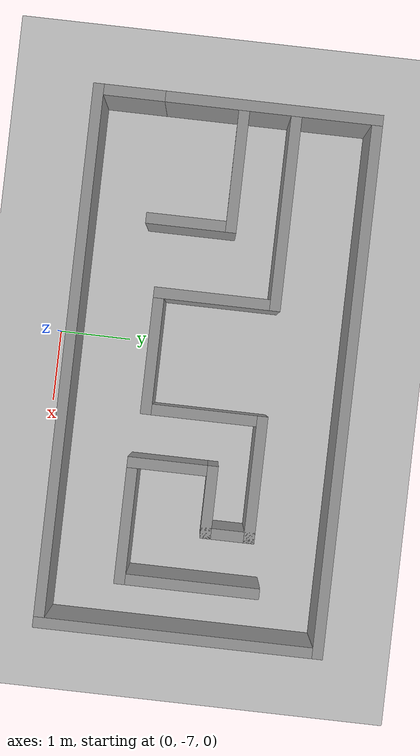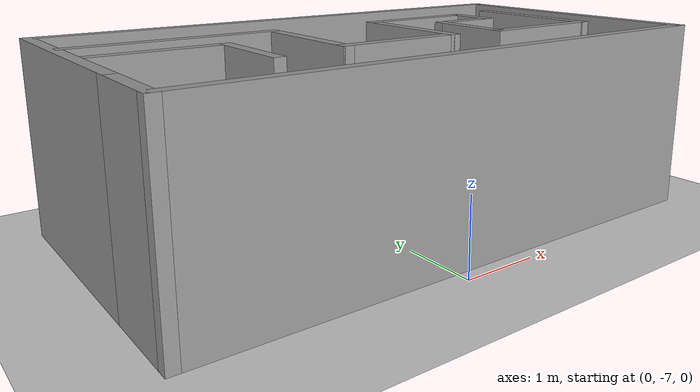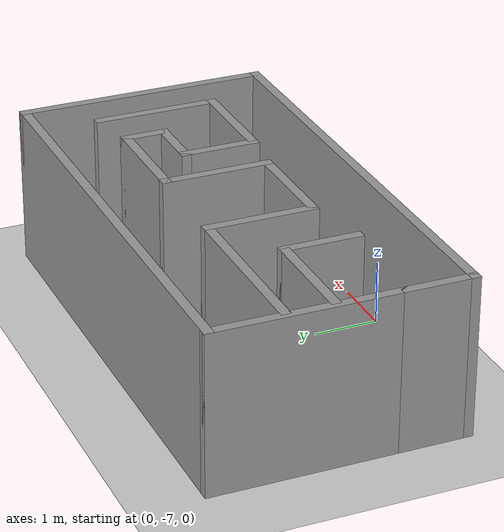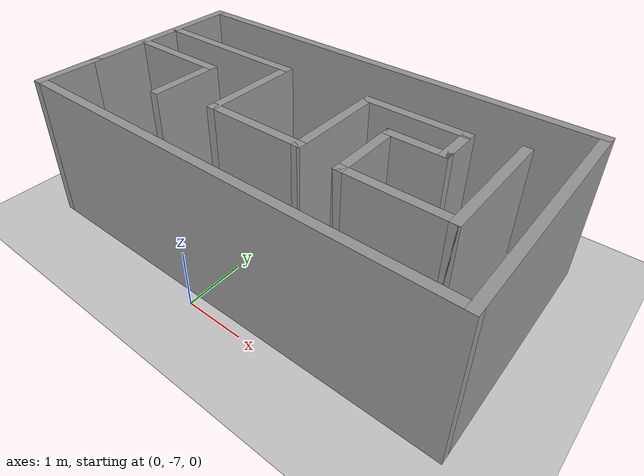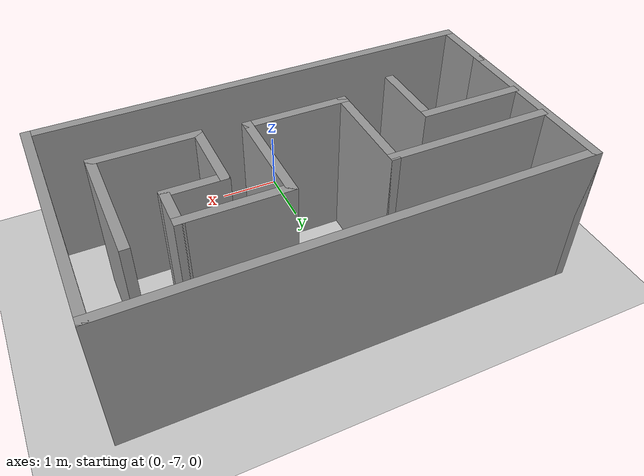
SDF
<sdf version="1.7">
 <world name="default">
  <light name="sun" type="directional">
   <pose>0 0 10 0 -0 0</pose>
   <diffuse>0.8 0.8 0.8 1</diffuse>
   <specular>0.2 0.2 0.2 1</specular>
   <attenuation>
    <range>1000</range>
    <constant>0.9</constant>
    <linear>0.01</linear>
    <quadratic>0.001</quadratic>
   </attenuation>
   <direction>-0.5 0.1 -0.9</direction>
   <spot><inner_angle>0</inner_angle><outer_angle>0</outer_angle><falloff>0</falloff></spot>
  </light>
  <model name="ground_plane">
   <static>1</static>
   <link name="link">
    <collision name="collision">
     <geometry><plane><normal>0 0 1</normal><size>100 100</size></plane></geometry>
     <surface>
      <contact><collide_bitmask>65535</collide_bitmask></contact>
      <friction><ode><mu>100</mu><mu2>50</mu2></ode></friction>
     </surface>
    </collision>
    <visual name="visual">
     <cast_shadows>0</cast_shadows>
     <geometry><plane><normal>0 0 1</normal><size>100 100</size></plane></geometry>
     <material>
      <script><uri>file://media/materials/scripts/gazebo.material</uri><name>Gazebo/Grey</name></script>
     </material>
    </visual>
   </link>
  </model>
  <gravity>0 0 -9.8</gravity>
  <magnetic_field>6e-06 2.3e-05 -4.2e-05</magnetic_field>
  <atmosphere type="adiabatic"/>
  <physics type="ode">
   <max_step_size>0.001</max_step_size>
   <real_time_factor>1</real_time_factor>
   <real_time_update_rate>1000</real_time_update_rate>
  </physics>
  <scene><ambient>0.4 0.4 0.4 1</ambient><background>0.7 0.7 0.7 1</background><shadows>1</shadows></scene>
  <audio><device>default</device></audio>
  <spherical_coordinates>
   <surface_model>EARTH_WGS84</surface_model>
   <latitude_deg>0</latitude_deg>
   <longitude_deg>0</longitude_deg>
   <elevation>0</elevation>
   <heading_deg>0</heading_deg>
  </spherical_coordinates>
  <model name="Epic_doored">
   <pose>0.335 -3.4125 0 0 -0 0</pose>
   <link name="Wall_0">
    <collision name="Wall_0_Collision">
     <geometry><box><size>3 0.15 2.5</size></box></geometry>
     <pose>0 0 1.25 0 -0 0</pose>
    </collision>
    <visual name="Wall_0_Visual">
     <pose>0 0 1.25 0 -0 0</pose>
     <geometry><box><size>3 0.15 2.5</size></box></geometry>
     <material>
      <script><uri>file://media/materials/scripts/gazebo.material</uri><name>Gazebo/Grey</name></script>
      <ambient>1 1 1 1</ambient>
     </material>
     <meta><layer>0</layer></meta>
    </visual>
    <pose>-3.675 -0.9125 0 0 -0 1.5708</pose>
   </link>
   <link name="Wall_1">
    <collision name="Wall_1_Collision">
     <geometry><box><size>7.5 0.15 2.5</size></box></geometry>
     <pose>0 0 1.25 0 -0 0</pose>
    </collision>
    <visual name="Wall_1_Visual">
     <pose>0 0 1.25 0 -0 0</pose>
     <geometry><box><size>7.5 0.15 2.5</size></box></geometry>
     <material>
      <script><uri>file://media/materials/scripts/gazebo.material</uri><name>Gazebo/Grey</name></script>
      <ambient>1 1 1 1</ambient>
     </material>
     <meta><layer>0</layer></meta>
    </visual>
    <pose>-0 0.5125 0 0 -0 0</pose>
   </link>
   <link name="Wall_10">
    <collision name="Wall_10_Collision">
     <geometry><box><size>1.75 0.15 2.5</size></box></geometry>
     <pose>0 0 1.25 0 -0 0</pose>
    </collision>
    <visual name="Wall_10_Visual">
     <pose>0 0 1.25 0 -0 0</pose>
     <geometry><box><size>1.75 0.15 2.5</size></box></geometry>
     <material>
      <script><uri>file://media/materials/scripts/gazebo.material</uri><name>Gazebo/Grey</name></script>
      <ambient>1 1 1 1</ambient>
     </material>
     <meta><layer>0</layer></meta>
    </visual>
    <pose>1.405 -0.5975 0 0 -0 0</pose>
   </link>
   <link name="Wall_11">
    <collision name="Wall_11_Collision">
     <geometry><box><size>0.75 0.15 2.5</size></box></geometry>
     <pose>0 0 1.25 0 -0 0</pose>
    </collision>
    <visual name="Wall_11_Visual">
     <pose>0 0 1.25 0 -0 0</pose>
     <geometry><box><size>0.75 0.15 2.5</size></box></geometry>
     <material>
      <script><uri>file://media/materials/scripts/gazebo.material</uri><name>Gazebo/Grey</name></script>
      <ambient>1 1 1 1</ambient>
     </material>
     <meta><layer>0</layer></meta>
    </visual>
    <pose>2.205 -0.8975 0 0 -0 -1.5708</pose>
   </link>
   <link name="Wall_12">
    <collision name="Wall_12_Collision">
     <geometry><box><size>1 0.15 2.5</size></box></geometry>
     <pose>0 0 1.25 0 -0 0</pose>
    </collision>
    <visual name="Wall_12_Visual">
     <pose>0 0 1.25 0 -0 0</pose>
     <geometry><box><size>1 0.15 2.5</size></box></geometry>
     <material>
      <script><uri>file://media/materials/scripts/gazebo.material</uri><name>Gazebo/Grey</name></script>
      <ambient>1 1 1 1</ambient>
     </material>
     <meta><layer>0</layer></meta>
    </visual>
    <pose>1.78 -1.1975 0 0 -0 3.14159</pose>
   </link>
   <link name="Wall_14">
    <collision name="Wall_14_Collision">
     <geometry><box><size>1.25 0.15 2.5</size></box></geometry>
     <pose>0 0 1.25 0 -0 0</pose>
    </collision>
    <visual name="Wall_14_Visual">
     <pose>0 0 1.25 0 -0 0</pose>
     <geometry><box><size>1.25 0.15 2.5</size></box></geometry>
     <material>
      <script><uri>file://media/materials/scripts/gazebo.material</uri><name>Gazebo/Grey</name></script>
      <ambient>1 1 1 1</ambient>
     </material>
     <meta><layer>0</layer></meta>
    </visual>
    <pose>1.355 -1.7475 0 0 -0 -1.5708</pose>
   </link>
   <link name="Wall_15">
    <collision name="Wall_15_Collision">
     <geometry><box><size>1.75 0.15 2.5</size></box></geometry>
     <pose>0 0 1.25 0 -0 0</pose>
    </collision>
    <visual name="Wall_15_Visual">
     <pose>0 0 1.25 0 -0 0</pose>
     <geometry><box><size>1.75 0.15 2.5</size></box></geometry>
     <material>
      <script><uri>file://media/materials/scripts/gazebo.material</uri><name>Gazebo/Grey</name></script>
      <ambient>1 1 1 1</ambient>
     </material>
     <meta><layer>0</layer></meta>
    </visual>
    <pose>2.155 -2.2975 0 0 -0 0</pose>
   </link>
   <link name="Wall_16">
    <collision name="Wall_16_Collision">
     <geometry><box><size>2 0.15 2.5</size></box></geometry>
     <pose>0 0 1.25 0 -0 0</pose>
    </collision>
    <visual name="Wall_16_Visual">
     <pose>0 0 1.25 0 -0 0</pose>
     <geometry><box><size>2 0.15 2.5</size></box></geometry>
     <material>
      <script><uri>file://media/materials/scripts/gazebo.material</uri><name>Gazebo/Grey</name></script>
      <ambient>1 1 1 1</ambient>
     </material>
     <meta><layer>0</layer></meta>
    </visual>
    <pose>2.955 -1.3725 0 0 -0 1.5708</pose>
   </link>
   <link name="Wall_18">
    <collision name="Wall_18_Collision">
     <geometry><box><size>1.75 0.15 2.5</size></box></geometry>
     <pose>0 0 1.25 0 -0 0</pose>
    </collision>
    <visual name="Wall_18_Visual">
     <pose>0 0 1.25 0 -0 0</pose>
     <geometry><box><size>1.75 0.15 2.5</size></box></geometry>
     <material>
      <script><uri>file://media/materials/scripts/gazebo.material</uri><name>Gazebo/Grey</name></script>
      <ambient>1 1 1 1</ambient>
     </material>
     <meta><layer>0</layer></meta>
    </visual>
    <pose>-2.795 -1.3175 0 0 -0 0</pose>
   </link>
   <link name="Wall_19">
    <collision name="Wall_19_Collision">
     <geometry><box><size>1.25 0.15 2.5</size></box></geometry>
     <pose>0 0 1.25 0 -0 0</pose>
    </collision>
    <visual name="Wall_19_Visual">
     <pose>0 0 1.25 0 -0 0</pose>
     <geometry><box><size>1.25 0.15 2.5</size></box></geometry>
     <material>
      <script><uri>file://media/materials/scripts/gazebo.material</uri><name>Gazebo/Grey</name></script>
      <ambient>1 1 1 1</ambient>
     </material>
     <meta><layer>0</layer></meta>
    </visual>
    <pose>-1.995 -1.8675 0 0 -0 -1.5708</pose>
   </link>
   <link name="Wall_2">
    <collision name="Wall_2_Collision">
     <geometry><box><size>4 0.15 2.5</size></box></geometry>
     <pose>0 0 1.25 0 -0 0</pose>
    </collision>
    <visual name="Wall_2_Visual">
     <pose>0 0 1.25 0 -0 0</pose>
     <geometry><box><size>4 0.15 2.5</size></box></geometry>
     <material>
      <script><uri>file://media/materials/scripts/gazebo.material</uri><name>Gazebo/Grey</name></script>
      <ambient>1 1 1 1</ambient>
     </material>
     <meta><layer>0</layer></meta>
    </visual>
    <pose>3.675 -1.4125 0 0 -0 -1.5708</pose>
   </link>
   <link name="Wall_3">
    <collision name="Wall_3_Collision">
     <geometry><box><size>7.5 0.15 2.5</size></box></geometry>
     <pose>0 0 1.25 0 -0 0</pose>
    </collision>
    <visual name="Wall_3_Visual">
     <pose>0 0 1.25 0 -0 0</pose>
     <geometry><box><size>7.5 0.15 2.5</size></box></geometry>
     <material>
      <script><uri>file://media/materials/scripts/gazebo.material</uri><name>Gazebo/Grey</name></script>
      <ambient>1 1 1 1</ambient>
     </material>
     <meta><layer>0</layer></meta>
    </visual>
    <pose>-0 -3.3375 0 0 -0 3.14159</pose>
   </link>
   <link name="Wall_4">
    <collision name="Wall_4_Collision">
     <geometry><box><size>1.15 0.15 2.5</size></box></geometry>
     <pose>0 0 1.25 0 -0 0</pose>
    </collision>
    <visual name="Wall_4_Visual">
     <pose>0 0 1.25 0 -0 0</pose>
     <geometry><box><size>1.15 0.15 2.5</size></box></geometry>
     <material>
      <script><uri>file://media/materials/scripts/gazebo.material</uri><name>Gazebo/Grey</name></script>
      <ambient>1 1 1 1</ambient>
     </material>
     <meta><layer>0</layer></meta>
    </visual>
    <pose>-3.675 -2.8375 0 0 -0 1.5708</pose>
   </link>
   <link name="Wall_6">
    <collision name="Wall_6_Collision">
     <geometry><box><size>2.75 0.15 2.5</size></box></geometry>
     <pose>0 0 1.25 0 -0 0</pose>
    </collision>
    <visual name="Wall_6_Visual">
     <pose>0 0 1.25 0 -0 0</pose>
     <geometry><box><size>2.75 0.15 2.5</size></box></geometry>
     <material>
      <script><uri>file://media/materials/scripts/gazebo.material</uri><name>Gazebo/Grey</name></script>
      <ambient>1 1 1 1</ambient>
     </material>
     <meta><layer>0</layer></meta>
    </visual>
    <pose>-2.295 -0.5975 0 0 -0 0</pose>
   </link>
   <link name="Wall_7">
    <collision name="Wall_7_Collision">
     <geometry><box><size>1.75 0.15 2.5</size></box></geometry>
     <pose>0 0 1.25 0 -0 0</pose>
    </collision>
    <visual name="Wall_7_Visual">
     <pose>0 0 1.25 0 -0 0</pose>
     <geometry><box><size>1.75 0.15 2.5</size></box></geometry>
     <material>
      <script><uri>file://media/materials/scripts/gazebo.material</uri><name>Gazebo/Grey</name></script>
      <ambient>1 1 1 1</ambient>
     </material>
     <meta><layer>0</layer></meta>
    </visual>
    <pose>-0.995 -1.3975 0 0 -0 -1.5708</pose>
   </link>
   <link name="Wall_8">
    <collision name="Wall_8_Collision">
     <geometry><box><size>1.75 0.15 2.5</size></box></geometry>
     <pose>0 0 1.25 0 -0 0</pose>
    </collision>
    <visual name="Wall_8_Visual">
     <pose>0 0 1.25 0 -0 0</pose>
     <geometry><box><size>1.75 0.15 2.5</size></box></geometry>
     <material>
      <script><uri>file://media/materials/scripts/gazebo.material</uri><name>Gazebo/Grey</name></script>
      <ambient>1 1 1 1</ambient>
     </material>
     <meta><layer>0</layer></meta>
    </visual>
    <pose>-0.195 -2.1975 0 0 -0 0</pose>
   </link>
   <link name="Wall_9">
    <collision name="Wall_9_Collision">
     <geometry><box><size>1.75 0.15 2.5</size></box></geometry>
     <pose>0 0 1.25 0 -0 0</pose>
    </collision>
    <visual name="Wall_9_Visual">
     <pose>0 0 1.25 0 -0 0</pose>
     <geometry><box><size>1.75 0.15 2.5</size></box></geometry>
     <material>
      <script><uri>file://media/materials/scripts/gazebo.material</uri><name>Gazebo/Grey</name></script>
      <ambient>1 1 1 1</ambient>
     </material>
     <meta><layer>0</layer></meta>
    </visual>
    <pose>0.605 -1.3975 0 0 -0 1.5708</pose>
   </link>
   <static>1</static>
  </model>
 </world>
</sdf>
